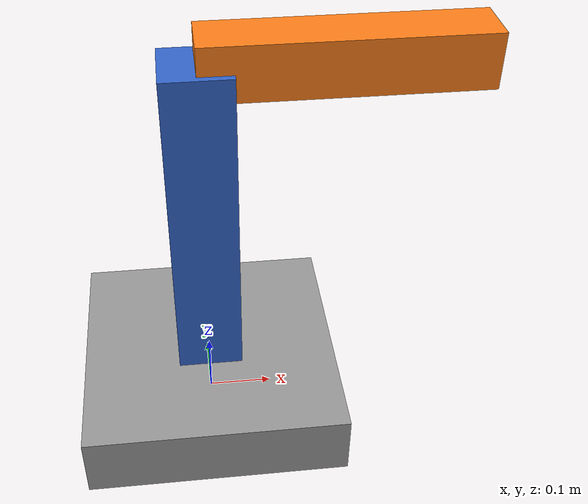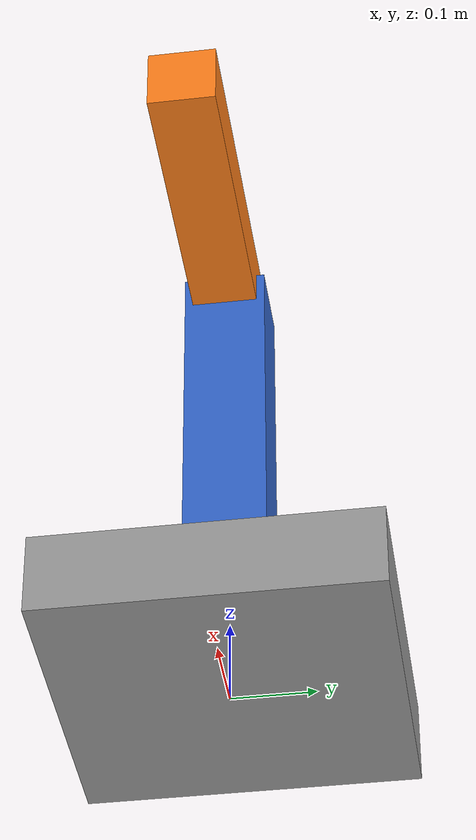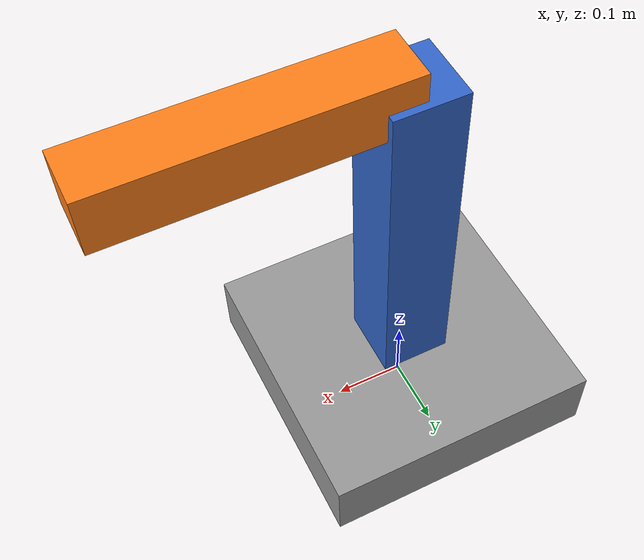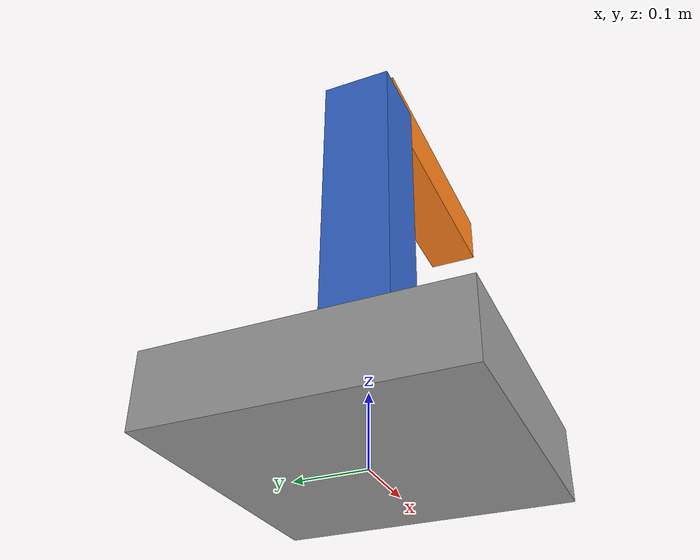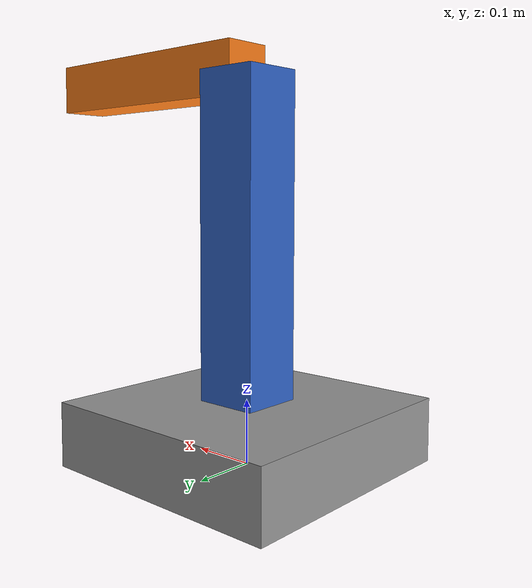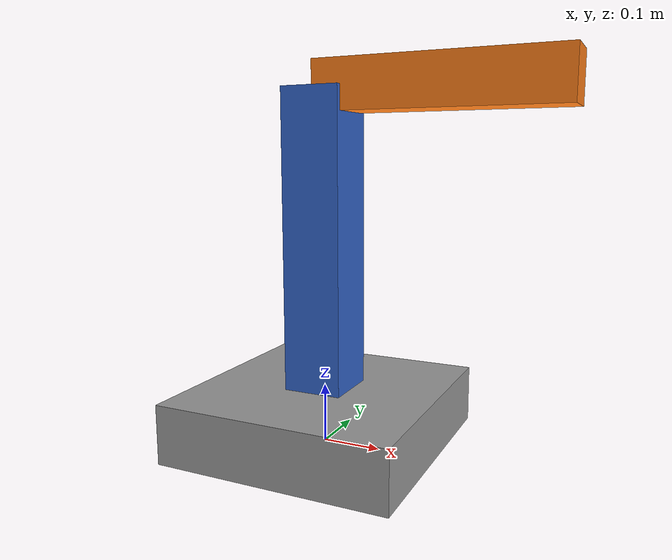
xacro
<?xml version="1.0"?>

<robot
  xmlns:xacro="http://www.ros.org/wiki/xacro"
  name="simple_arm">
<xacro:include
  filename="$(find robot_description)/urdf/common_macros.xacro"
/>

<xacro:include
  filename="$(find robot_description)/urdf/simple_arm.ros2_control.xacro"
/>
  <!-- ① 参数区：放 property -->

  <xacro:property name="base_width" value="0.4"/>
  <xacro:property name="base_height" value="0.1"/>

  <xacro:property name="link1_width" value="0.1"/>
  <xacro:property name="link1_length" value="0.5"/>

  <xacro:property name="link2_width" value="0.08"/>
  <xacro:property name="link2_length" value="0.4"/>

  <xacro:property name="joint_limit" value="1.57"/>

  <!-- ③ 真正生成机器人 -->

  <!-- base_link -->
  <xacro:box_link
    name="base_link"
    size_x="${base_width}"
    size_y="${base_width}"
    size_z="${base_height}"
    origin_xyz="0 0 ${base_height / 2.0}"
    color="0.6 0.6 0.6 1.0"
    mass="5.0"
  />

  <!-- link1 -->
  <xacro:box_link
    name="link1"
    size_x="${link1_width}"
    size_y="${link1_width}"
    size_z="${link1_length}"
    origin_xyz="0 0 ${link1_length / 2.0}"
    color="0.2 0.4 0.8 1.0"
     mass="2.0"
  />

  <!-- joint1 -->
  <xacro:revolute_joint
    name="joint1"
    parent="base_link"
    child="link1"
    origin_xyz="0 0 ${base_height}"
    axis_xyz="0 1 0"
    lower="${-joint_limit}"
    upper="${joint_limit}"
  />

  <!-- link2 -->
  <xacro:box_link
    name="link2"
    size_x="${link2_length}"
    size_y="${link2_width}"
    size_z="${link2_width}"
    origin_xyz="${link2_length / 2.0} 0 0"
    color="1.0 0.5 0.1 1.0"
     mass="1.0"
  />

  <!-- joint2 -->
  <xacro:revolute_joint
    name="joint2"
    parent="link1"
    child="link2"
    origin_xyz="0 0 ${link1_length}"
    axis_xyz="0 1 0"
    lower="${-joint_limit}"
    upper="${joint_limit}"
  />

  <!-- tool_link -->
  <link name="tool_link"/>

  <joint name="tool_joint" type="fixed">

    <parent link="link2"/>
    <child link="tool_link"/>

    <origin
      xyz="${link2_length} 0 0"
      rpy="0 0 0"
    />

  </joint>

  <!-- ros2_control -->
  <xacro:simple_arm_ros2_control
    name="SimpleArmSystem"
  />
</robot>

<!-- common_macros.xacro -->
<robot xmlns:xacro="http://www.ros.org/wiki/xacro">

  <!-- Box Link Macro -->

  <xacro:macro
    name="box_link"
    params="name size_x size_y size_z origin_xyz color mass">

    <link name="${name}">

      <!-- Visual -->
      <visual>

        <origin
          xyz="${origin_xyz}"
          rpy="0 0 0"
        />

        <geometry>
          <box size="${size_x} ${size_y} ${size_z}"/>
        </geometry>

        <material name="${name}_material">
          <color rgba="${color}"/>
        </material>

      </visual>

      <!-- Collision -->
      <collision>

        <origin
          xyz="${origin_xyz}"
          rpy="0 0 0"
        />

        <geometry>
          <box size="${size_x} ${size_y} ${size_z}"/>
        </geometry>

      </collision>
<inertial>

  <!-- 质心和几何中心保持一致 -->
  <origin
    xyz="${origin_xyz}"
    rpy="0 0 0"
  />

  <!-- 质量 -->
  <mass value="${mass}"/>

  <!-- 长方体惯性矩阵 -->
  <inertia
    ixx="${mass / 12.0 * (size_y * size_y + size_z * size_z)}"
    ixy="0.0"
    ixz="0.0"
    iyy="${mass / 12.0 * (size_x * size_x + size_z * size_z)}"
    iyz="0.0"
    izz="${mass / 12.0 * (size_x * size_x + size_y * size_y)}"
  />

</inertial>
    </link>

  </xacro:macro>

  <!-- Revolute Joint Macro -->

  <xacro:macro
    name="revolute_joint"
    params="name parent child origin_xyz axis_xyz lower upper">

    <joint name="${name}" type="revolute">

      <parent link="${parent}"/>
      <child link="${child}"/>

      <origin
        xyz="${origin_xyz}"
        rpy="0 0 0"
      />

      <axis xyz="${axis_xyz}"/>

      <limit
        lower="${lower}"
        upper="${upper}"
        effort="10.0"
        velocity="1.0"
      />

    </joint>

  </xacro:macro>

</robot>
